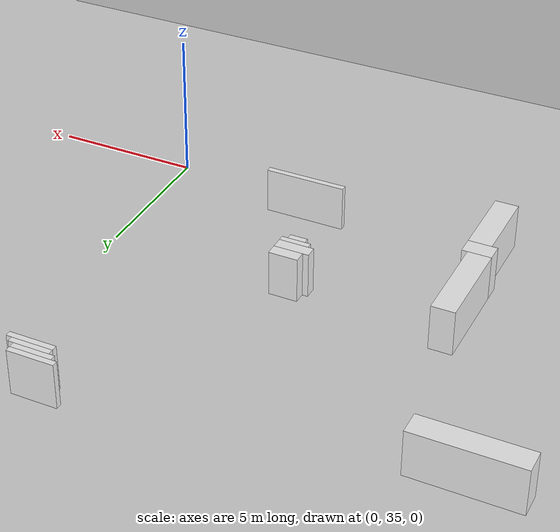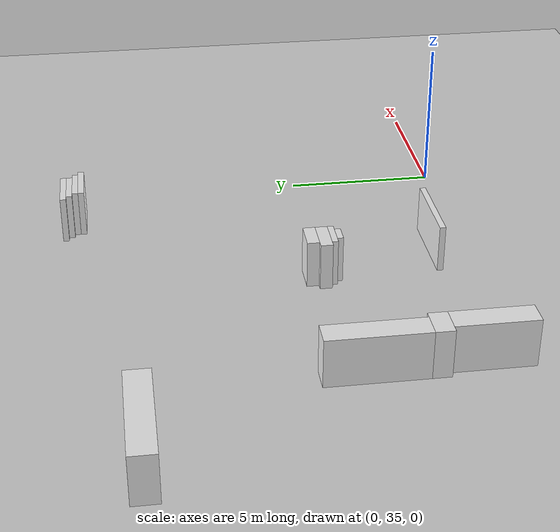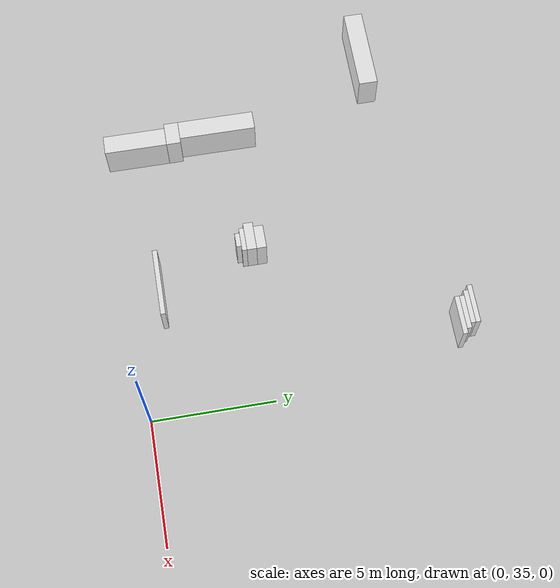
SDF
<sdf version="1.7">
 <world name="default">
  <model name="ground_plane">
   <static>1</static>
   <link name="link">
    <collision name="collision">
     <geometry><plane><normal>0 0 1</normal><size>120 120</size></plane></geometry>
    </collision>
    <visual name="visual">
     <geometry><plane><normal>0 0 1</normal><size>120 120</size></plane></geometry>
     <material>
      <script><uri>file://media/materials/scripts/gazebo.material</uri><name>Gazebo/Grey</name></script>
     </material>
    </visual>
   </link>
  </model>
  <model name="random_complex_01_model">
   <static>1</static>
   <link name="obs_4">
    <pose>-2.2000 48.3000 0.8000 0 0 0</pose>
    <collision name="obs_4_col"><geometry><box><size>1.6000 0.2000 1.6000</size></box></geometry></collision>
    <visual name="obs_4_vis">
     <geometry><box><size>1.6000 0.2000 1.6000</size></box></geometry>
     <material>
      <script><uri>file://media/materials/scripts/gazebo.material</uri><name>Gazebo/White</name></script>
     </material>
    </visual>
   </link>
   <link name="obs_11">
    <pose>-2.1000 48.1000 0.8000 0 0 0</pose>
    <collision name="obs_11_col"><geometry><box><size>1.4000 0.2000 1.6000</size></box></geometry></collision>
    <visual name="obs_11_vis">
     <geometry><box><size>1.4000 0.2000 1.6000</size></box></geometry>
     <material>
      <script><uri>file://media/materials/scripts/gazebo.material</uri><name>Gazebo/White</name></script>
     </material>
    </visual>
   </link>
   <link name="obs_19">
    <pose>-1.9000 47.9000 0.8000 0 0 0</pose>
    <collision name="obs_19_col"><geometry><box><size>1.4000 0.2000 1.6000</size></box></geometry></collision>
    <visual name="obs_19_vis">
     <geometry><box><size>1.4000 0.2000 1.6000</size></box></geometry>
     <material>
      <script><uri>file://media/materials/scripts/gazebo.material</uri><name>Gazebo/White</name></script>
     </material>
    </visual>
   </link>
   <link name="obs_25">
    <pose>-1.8000 47.7000 0.8000 0 0 0</pose>
    <collision name="obs_25_col"><geometry><box><size>1.6000 0.2000 1.6000</size></box></geometry></collision>
    <visual name="obs_25_vis">
     <geometry><box><size>1.6000 0.2000 1.6000</size></box></geometry>
     <material>
      <script><uri>file://media/materials/scripts/gazebo.material</uri><name>Gazebo/White</name></script>
     </material>
    </visual>
   </link>
   <link name="obs_87">
    <pose>-14.8000 46.2000 0.8000 0 0 0</pose>
    <collision name="obs_87_col"><geometry><box><size>3.6000 0.8000 1.6000</size></box></geometry></collision>
    <visual name="obs_87_vis">
     <geometry><box><size>3.6000 0.8000 1.6000</size></box></geometry>
     <material>
      <script><uri>file://media/materials/scripts/gazebo.material</uri><name>Gazebo/White</name></script>
     </material>
    </visual>
   </link>
   <link name="obs_290">
    <pose>-6.5000 40.4000 0.8000 0 0 0</pose>
    <collision name="obs_290_col"><geometry><box><size>1.0000 0.4000 1.6000</size></box></geometry></collision>
    <visual name="obs_290_vis">
     <geometry><box><size>1.0000 0.4000 1.6000</size></box></geometry>
     <material>
      <script><uri>file://media/materials/scripts/gazebo.material</uri><name>Gazebo/White</name></script>
     </material>
    </visual>
   </link>
   <link name="obs_300">
    <pose>-6.6000 40.0000 0.8000 0 0 0</pose>
    <collision name="obs_300_col"><geometry><box><size>1.2000 0.4000 1.6000</size></box></geometry></collision>
    <visual name="obs_300_vis">
     <geometry><box><size>1.2000 0.4000 1.6000</size></box></geometry>
     <material>
      <script><uri>file://media/materials/scripts/gazebo.material</uri><name>Gazebo/White</name></script>
     </material>
    </visual>
   </link>
   <link name="obs_307">
    <pose>-6.5000 39.7000 0.8000 0 0 0</pose>
    <collision name="obs_307_col"><geometry><box><size>1.0000 0.2000 1.6000</size></box></geometry></collision>
    <visual name="obs_307_vis">
     <geometry><box><size>1.0000 0.2000 1.6000</size></box></geometry>
     <material>
      <script><uri>file://media/materials/scripts/gazebo.material</uri><name>Gazebo/White</name></script>
     </material>
    </visual>
   </link>
   <link name="obs_310">
    <pose>-6.5000 39.5000 0.8000 0 0 0</pose>
    <collision name="obs_310_col"><geometry><box><size>0.6000 0.2000 1.6000</size></box></geometry></collision>
    <visual name="obs_310_vis">
     <geometry><box><size>0.6000 0.2000 1.6000</size></box></geometry>
     <material>
      <script><uri>file://media/materials/scripts/gazebo.material</uri><name>Gazebo/White</name></script>
     </material>
    </visual>
   </link>
   <link name="obs_336">
    <pose>-12.0000 39.4000 0.8000 0 0 0</pose>
    <collision name="obs_336_col"><geometry><box><size>0.8000 3.2000 1.6000</size></box></geometry></collision>
    <visual name="obs_336_vis">
     <geometry><box><size>0.8000 3.2000 1.6000</size></box></geometry>
     <material>
      <script><uri>file://media/materials/scripts/gazebo.material</uri><name>Gazebo/White</name></script>
     </material>
    </visual>
   </link>
   <link name="obs_358">
    <pose>-11.9000 37.5000 0.8000 0 0 0</pose>
    <collision name="obs_358_col"><geometry><box><size>1.0000 0.6000 1.6000</size></box></geometry></collision>
    <visual name="obs_358_vis">
     <geometry><box><size>1.0000 0.6000 1.6000</size></box></geometry>
     <material>
      <script><uri>file://media/materials/scripts/gazebo.material</uri><name>Gazebo/White</name></script>
     </material>
    </visual>
   </link>
   <link name="obs_408">
    <pose>-5.2000 36.1000 0.8000 0 0 0</pose>
    <collision name="obs_408_col"><geometry><box><size>2.8000 0.2000 1.6000</size></box></geometry></collision>
    <visual name="obs_408_vis">
     <geometry><box><size>2.8000 0.2000 1.6000</size></box></geometry>
     <material>
      <script><uri>file://media/materials/scripts/gazebo.material</uri><name>Gazebo/White</name></script>
     </material>
    </visual>
   </link>
   <link name="obs_456">
    <pose>-11.8000 35.9000 0.8000 0 0 0</pose>
    <collision name="obs_456_col"><geometry><box><size>0.8000 2.6000 1.6000</size></box></geometry></collision>
    <visual name="obs_456_vis">
     <geometry><box><size>0.8000 2.6000 1.6000</size></box></geometry>
     <material>
      <script><uri>file://media/materials/scripts/gazebo.material</uri><name>Gazebo/White</name></script>
     </material>
    </visual>
   </link>
  </model>
 </world>
</sdf>
